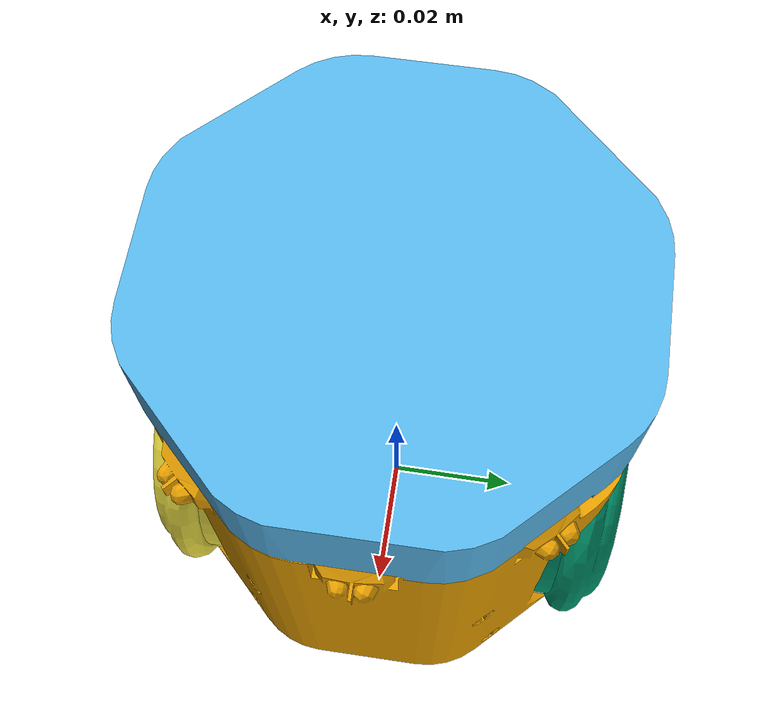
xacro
<?xml version="1.0"?>
<robot xmlns:xacro="http://www.ros.org/wiki/xacro" name="hero_0">
  <!-- Properties  -->
  <xacro:include filename="$(find hero_description)/urdf/common.xacro" />
  <!-- Initiate HeRo model and controller -->
  <xacro:include filename="$(find hero_description)/urdf/hero.xacro" />
  <xacro:include filename="$(find hero_description)/urdf/hero.gazebo.xacro" />
  <xacro:include filename="$(find hero_description)/urdf/hero.transmissions.xacro" />
  <!-- Initiate Laser and IMU sensors -->
  <xacro:include filename="$(find hero_description)/urdf/laser.xacro" />
  <xacro:include filename="$(find hero_description)/urdf/laser.gazebo.xacro" />
  <xacro:include filename="$(find hero_description)/urdf/imu.gazebo.xacro" />

</robot>

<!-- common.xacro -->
<robot xmlns:xacro="http://www.ros.org/wiki/xacro">

  <!-- Some properties of HERO -->
  <property name="PI" value="3.1415926535897931" />
  <property name="wheel_separation" value="0.0623" />
  <property name="wheel_diameter" value="0.0496" />

  <macro name="cylinder_inertia" params="m r h">
    <inertia ixx="${m*(3*r*r+h*h)/12}" ixy = "0" ixz = "0" iyy="${m*(3*r*r+h*h)/12}" iyz = "0" izz="${m*r*r/2}" />
  </macro>

  <macro name="box_inertia" params="m x y z">
    <inertia ixx="${m*(y*y+z*z)/12}" ixy = "0" ixz = "0" iyy="${m*(x*x+z*z)/12}" iyz = "0" izz="${m*(x*x+z*z)/12}" />
  </macro>

</robot>

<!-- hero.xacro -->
<robot xmlns:xacro="http://www.ros.org/wiki/xacro">

  <!-- Here was the base link definitions -->
  <link name="base_link">
    <visual>
      <origin xyz="0 0 0" rpy="0 0 ${pi/2}" />
      <geometry>
        <mesh filename="package://hero_description/meshes/base_link.obj" scale="1 1 1"/>
      </geometry>
    </visual>
    <collision>
      <origin xyz="0 0 0.0121" rpy="0 0 ${pi/2}" />
      <geometry>
        <cylinder length="0.042" radius="0.037"/>
      </geometry>
    </collision>
    <inertial>
      <mass value="0.090" />
      <origin xyz="0 0.0002 0" rpy="${pi/2} 0 0"/>
      <xacro:cylinder_inertia m="0.090" r="0.035" h="0.065"/>
    </inertial>
  </link>
  <gazebo reference="base_link">
    <gravity>1</gravity>
    <mu1 value="0.01"/>
    <mu2 value="0.01"/>
    <maxContacts>4</maxContacts>
    <selfCollide>1</selfCollide>
  </gazebo>

  <!--  Here was the hat joint and link -->
  <joint name="hat_joint" type="fixed">
    <origin xyz="-0.00245 -0.00216 0.06027" rpy="0 0 0" />
    <parent link="base_link"/>
    <child link="hat_link"/>
  </joint>
  <link name="hat_link">
    <visual>
      <origin xyz="0 0 0" rpy="0 0 0" />
      <geometry>
        <mesh filename="package://hero_description/meshes/hat.obj" scale="1 1 1"/>
      </geometry>
    </visual>
    <collision>
      <origin xyz="0 0 0" rpy="0 0 0" />
      <geometry>
        <mesh filename="package://hero_description/meshes/hat.obj" scale="1 1 1"/>
      </geometry>
    </collision>
    <inertial>
      <mass value="0.010" />
      <origin xyz="0 0 0" rpy="0 0 0"/>
      <xacro:cylinder_inertia m="0.010" r="0.035" h="0.02"/>
    </inertial>
  </link>
  <gazebo reference="hat_link">
    <gravity>1</gravity>
    <maxVel value="0.10"/>
    <maxContacts>0</maxContacts>
    <selfCollide>0</selfCollide>
  </gazebo>

  <!--  Here was the left wheel joint and link -->
  <joint name="left_wheel_joint" type="continuous">
    <parent link="base_link"/>
    <child link="left_wheel_link"/>
    <origin xyz="0.0 ${wheel_separation/2} 0.01548" rpy="0 0 0" />
    <axis xyz="0 1 0" />
    <limit effort="0.1" velocity="0.3"/>
    <dynamics damping="0.0001" friction="0.0" />
  </joint>
  <link name="left_wheel_link">
    <visual>
      <origin xyz="0 0 0.0" rpy="0 0 0" />
      <geometry>
        <mesh filename="package://hero_description/meshes/wheel.obj" scale="1 1 1"/>
      </geometry>
    </visual>
    <collision>
      <origin xyz="0 0 0.0" rpy="${PI/2} 0 0" />
      <geometry>
        <cylinder length="0.008" radius="${wheel_diameter/2.0}"/>
      </geometry>
    </collision>
    <inertial>
      <mass value="0.020" />
      <origin xyz="0 0 0" rpy="${PI/2} 0 0"/>
      <xacro:cylinder_inertia m="0.010" h="0.008" r="${wheel_diameter/2.0}"/>
    </inertial>
  </link>
  <gazebo reference="left_wheel_link">
    <mu1 value="1.0"/>
    <mu2 value="1.0"/>
    <gravity>1</gravity>
    <maxContacts>4</maxContacts>
    <selfCollide>0</selfCollide>
  </gazebo>

  <!--  Here was the right wheel joint and link -->
  <joint name="right_wheel_joint" type="continuous">
    <axis xyz="0 1 0" />
    <limit effort="0.1" velocity="0.3"/>
    <dynamics damping="0.0001" friction="0" />
    <origin xyz="0.0 ${-wheel_separation/2} 0.01548" rpy="0 0 0" />
    <parent link="base_link"/>
    <child link="right_wheel_link"/>
  </joint>
  <link name="right_wheel_link">
    <visual>
      <origin xyz="0 0 0.0" rpy="${-PI} 0 0" />
      <geometry>
        <mesh filename="package://hero_description/meshes/wheel.obj" scale="1 1 1"/>
      </geometry>
    </visual>
    <collision>
      <origin xyz="0 0 0.0" rpy="${-PI/2} 0 0" />
      <geometry>
        <cylinder length="0.008" radius="${wheel_diameter/2.0}"/>
      </geometry>
    </collision>
    <inertial>
      <mass value="0.020" />
      <origin xyz="0 0 0" rpy="${-PI/2} 0 0"/>
      <xacro:cylinder_inertia m="0.010" h="0.008" r="${wheel_diameter/2.0}"/>
    </inertial>
  </link>
  <gazebo reference="right_wheel_link">
    <mu1 value="1.0"/>
    <mu2 value="1.0"/>
    <gravity>1</gravity>
    <maxContacts>4</maxContacts>
    <selfCollide>0</selfCollide>
  </gazebo>

</robot>

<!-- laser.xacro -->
<robot xmlns:xacro="http://www.ros.org/wiki/xacro">

    <joint name="laser_joint" type="fixed">
        <axis xyz="0 1 0" />
        <origin xyz="0 0 0.051" rpy="0 0 0"/>
        <parent link="base_link"/>
        <child link="laser_link"/>
    </joint>

    <!-- Here is the laser link -->
    <link name="laser_link">
        <collision>
            <origin xyz="0 0 0" rpy="0 0 0"/>
            <geometry>
                <box size="0.001 0.001 0.001"/>
            </geometry>
        </collision>

        <visual>
            <origin xyz="0 0 0" rpy="0 0 0"/>
            <geometry>
                <box size="0.001 0.001 0.001"/>
            </geometry>
        </visual>

        <inertial>
            <mass value="1e-5" />
            <origin xyz="0 0 0" rpy="0 0 0"/>
            <inertia ixx="1e-6" ixy="0" ixz="0" iyy="1e-6" iyz="0" izz="1e-6" />
        </inertial>
    </link>
</robot>
